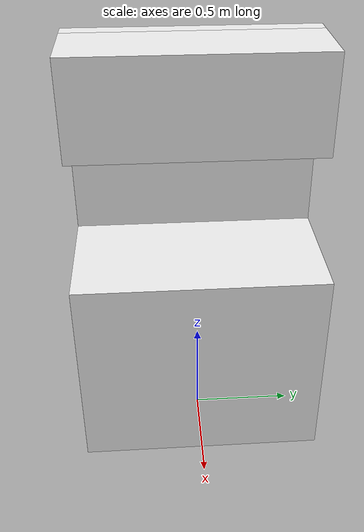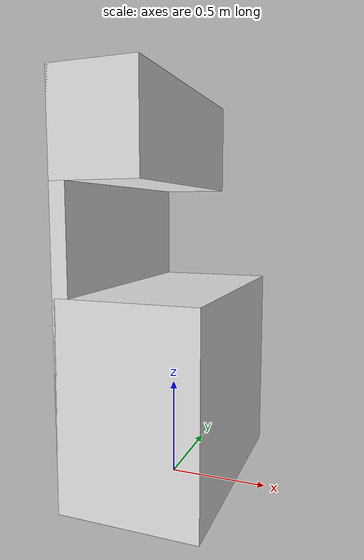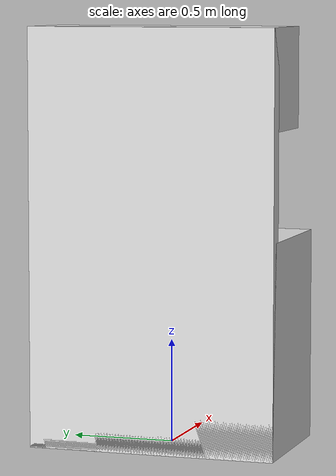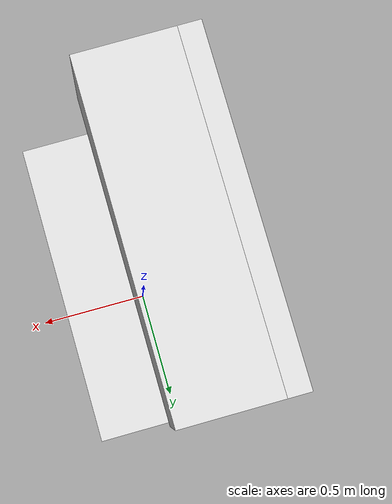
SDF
<?xml version="1.0"?>
<sdf version="1.6">
  <model name="rgo2015/kitchen_counter">
    <link name="1_link">
      <collision name="1_col">
        <geometry>
          <box>
            <size>0.69 1.205 1.02</size>
          </box>
        </geometry>
      </collision>
      <visual name="1_vis">
        <geometry>
          <box>
            <size>0.69 1.205 1.02</size>
          </box>
        </geometry>
        <material>
          <ambient>0.9 0.9 0.9 1</ambient>
        </material>
      </visual>
      <pose>0.0 0.0 0.51 0 0 0</pose>
    </link>
    <link name="2_link">
      <collision name="2_col">
        <geometry>
          <box>
            <size>0.08 1.205 2.01</size>
          </box>
        </geometry>
      </collision>
      <visual name="2_vis">
        <geometry>
          <box>
            <size>0.08 1.205 2.01</size>
          </box>
        </geometry>
        <material>
          <ambient>0.9 0.9 0.9 1</ambient>
        </material>
      </visual>
      <pose>-0.305 0.0 1.005 0 0 0</pose>
    </link>
    <link name="3_link">
      <collision name="3_col">
        <geometry>
          <box>
            <size>0.43 1.205 0.48</size>
          </box>
        </geometry>
      </collision>
      <visual name="3_vis">
        <geometry>
          <box>
            <size>0.43 1.205 0.48</size>
          </box>
        </geometry>
        <material>
          <ambient>0.9 0.9 0.9 1</ambient>
        </material>
      </visual>
      <pose>-0.13 0.0 1.77 0 0 0</pose>
    </link>
    <static>true</static>
  </model>
</sdf>
